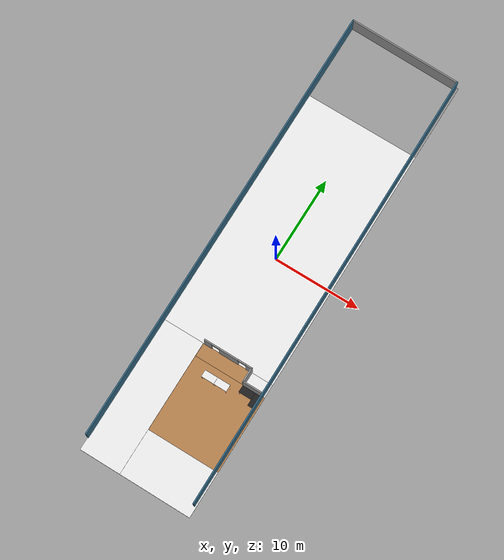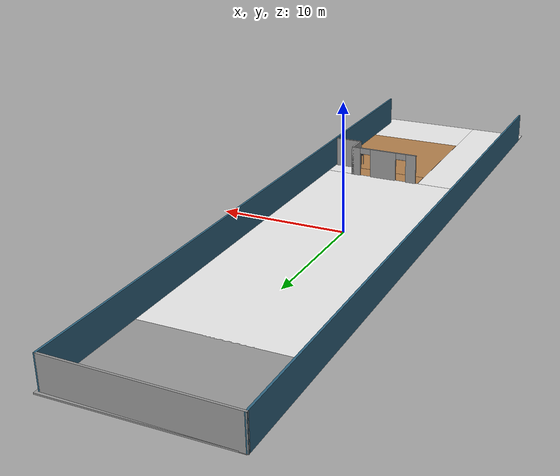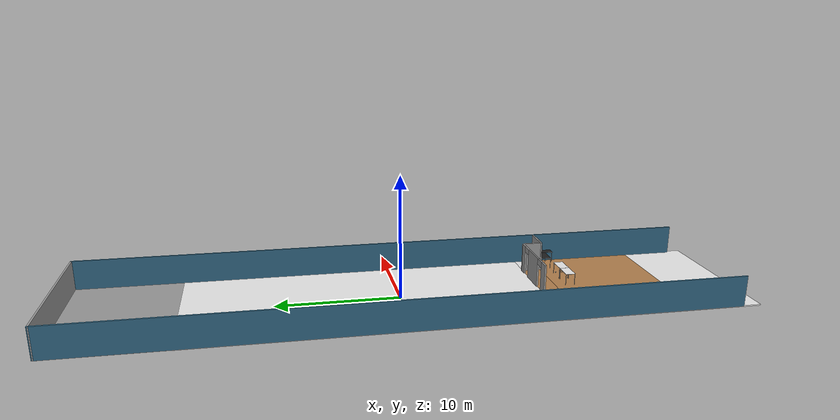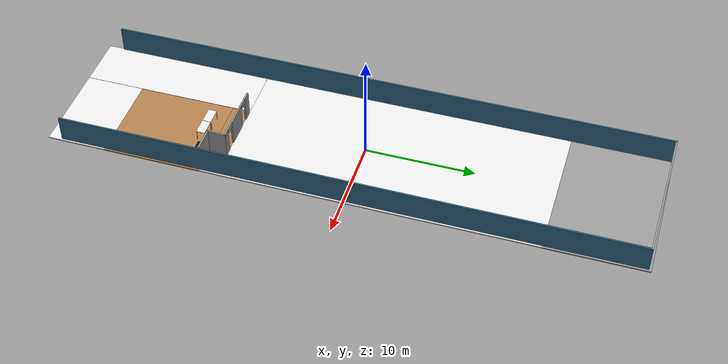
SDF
<sdf version="1.7">
 <model name="ageve">
  <link name="Wall_13">
   <pose>6.47851 -0.1058 0 0 -0 1.5708</pose>
   <visual name="Wall_13_Visual">
    <pose>0 0 1.25 0 -0 0</pose>
    <geometry><box><size>52.25 0.15 2.5</size></box></geometry>
    <material>
     <ambient>0.19 0.4 0.51 1</ambient>
     <diffuse>0.19 0.4 0.51 1</diffuse>
     <specular>0.19 0.4 0.51 1</specular>
     <emissive>0.19 0.4 0.51 1</emissive>
     <shader type="pixel"/>
     <script><name>ModelPreview_1::Wall_9::Wall_9_Visual_MATERIAL_</name><uri>__default__</uri></script>
    </material>
    <meta><layer>0</layer></meta>
   </visual>
   <collision name="Wall_13_Collision">
    <pose>0 0 1.25 0 -0 0</pose>
    <geometry><box><size>52.25 0.15 2.5</size></box></geometry>
    <surface>
     <friction>
      <ode><mu>1</mu><mu2>1</mu2><fdir1>0 0 0</fdir1><slip1>0</slip1><slip2>0</slip2></ode>
      <torsional>
       <coefficient>1</coefficient>
       <patch_radius>0</patch_radius>
       <surface_radius>0</surface_radius>
       <use_patch_radius>1</use_patch_radius>
       <ode><slip>0</slip></ode>
      </torsional>
     </friction>
     <bounce><restitution_coefficient>0</restitution_coefficient><threshold>1e+06</threshold></bounce>
     <contact>
      <collide_without_contact>0</collide_without_contact>
      <collide_without_contact_bitmask>1</collide_without_contact_bitmask>
      <collide_bitmask>1</collide_bitmask>
      <ode>
       <soft_cfm>0</soft_cfm>
       <soft_erp>0.2</soft_erp>
       <kp>1e+13</kp>
       <kd>1</kd>
       <max_vel>0.01</max_vel>
       <min_depth>0</min_depth>
      </ode>
      <bullet>
       <split_impulse>1</split_impulse>
       <split_impulse_penetration_threshold>-0.01</split_impulse_penetration_threshold>
       <soft_cfm>0</soft_cfm>
       <soft_erp>0.2</soft_erp>
       <kp>1e+13</kp>
       <kd>1</kd>
      </bullet>
     </contact>
    </surface>
   </collision>
  </link>
  <link name="Wall_14">
   <pose>-0.012617 26.05 0 0 -0 3.12523</pose>
   <visual name="Wall_14_Visual">
    <pose>0 0 1.25 0 -0 0</pose>
    <geometry><box><size>13.0811 0.15 2.5</size></box></geometry>
    <material>
     <script><uri>file://media/materials/scripts/gazebo.material</uri><name>Gazebo/Grey</name></script>
     <ambient>1 1 1 1</ambient>
     <shader type="pixel"/>
    </material>
    <meta><layer>0</layer></meta>
   </visual>
   <collision name="Wall_14_Collision">
    <pose>0 0 1.25 0 -0 0</pose>
    <geometry><box><size>13.0811 0.15 2.5</size></box></geometry>
    <surface>
     <friction>
      <ode><mu>1</mu><mu2>1</mu2><fdir1>0 0 0</fdir1><slip1>0</slip1><slip2>0</slip2></ode>
      <torsional>
       <coefficient>1</coefficient>
       <patch_radius>0</patch_radius>
       <surface_radius>0</surface_radius>
       <use_patch_radius>1</use_patch_radius>
       <ode><slip>0</slip></ode>
      </torsional>
     </friction>
     <bounce><restitution_coefficient>0</restitution_coefficient><threshold>1e+06</threshold></bounce>
     <contact>
      <collide_without_contact>0</collide_without_contact>
      <collide_without_contact_bitmask>1</collide_without_contact_bitmask>
      <collide_bitmask>1</collide_bitmask>
      <ode>
       <soft_cfm>0</soft_cfm>
       <soft_erp>0.2</soft_erp>
       <kp>1e+13</kp>
       <kd>1</kd>
       <max_vel>0.01</max_vel>
       <min_depth>0</min_depth>
      </ode>
      <bullet>
       <split_impulse>1</split_impulse>
       <split_impulse_penetration_threshold>-0.01</split_impulse_penetration_threshold>
       <soft_cfm>0</soft_cfm>
       <soft_erp>0.2</soft_erp>
       <kp>1e+13</kp>
       <kd>1</kd>
      </bullet>
     </contact>
    </surface>
   </collision>
  </link>
  <link name="Wall_15">
   <pose>-6.47729 0.1058 0 0 0 -1.5708</pose>
   <visual name="Wall_15_Visual">
    <pose>0 0 1.25 0 -0 0</pose>
    <geometry><box><size>52.25 0.15 2.5</size></box></geometry>
    <material>
     <ambient>0.19 0.4 0.51 1</ambient>
     <diffuse>0.19 0.4 0.51 1</diffuse>
     <specular>0.19 0.4 0.51 1</specular>
     <emissive>0.19 0.4 0.51 1</emissive>
     <shader type="pixel"/>
     <script><name>ModelPreview_1::Wall_9::Wall_9_Visual_MATERIAL_</name><uri>__default__</uri></script>
    </material>
    <meta><layer>0</layer></meta>
   </visual>
   <collision name="Wall_15_Collision">
    <pose>0 0 1.25 0 -0 0</pose>
    <geometry><box><size>52.25 0.15 2.5</size></box></geometry>
    <surface>
     <friction>
      <ode><mu>1</mu><mu2>1</mu2><fdir1>0 0 0</fdir1><slip1>0</slip1><slip2>0</slip2></ode>
      <torsional>
       <coefficient>1</coefficient>
       <patch_radius>0</patch_radius>
       <surface_radius>0</surface_radius>
       <use_patch_radius>1</use_patch_radius>
       <ode><slip>0</slip></ode>
      </torsional>
     </friction>
     <bounce><restitution_coefficient>0</restitution_coefficient><threshold>1e+06</threshold></bounce>
     <contact>
      <collide_without_contact>0</collide_without_contact>
      <collide_without_contact_bitmask>1</collide_without_contact_bitmask>
      <collide_bitmask>1</collide_bitmask>
      <ode>
       <soft_cfm>0</soft_cfm>
       <soft_erp>0.2</soft_erp>
       <kp>1e+13</kp>
       <kd>1</kd>
       <max_vel>0.01</max_vel>
       <min_depth>0</min_depth>
      </ode>
      <bullet>
       <split_impulse>1</split_impulse>
       <split_impulse_penetration_threshold>-0.01</split_impulse_penetration_threshold>
       <soft_cfm>0</soft_cfm>
       <soft_erp>0.2</soft_erp>
       <kp>1e+13</kp>
       <kd>1</kd>
      </bullet>
     </contact>
    </surface>
   </collision>
  </link>
  <link name="Wall_4">
   <pose>1.37549 -11.4935 0 0 -0 0</pose>
   <visual name="Wall_4_Visual_0">
    <pose>-2.43007 0 1.25 0 -0 0</pose>
    <geometry><box><size>0.889859 0.15 2.5</size></box></geometry>
    <material>
     <script><uri>file://media/materials/scripts/gazebo.material</uri><name>Gazebo/Grey</name></script>
     <ambient>1 1 1 1</ambient>
     <shader type="pixel"/>
    </material>
    <meta><layer>0</layer></meta>
   </visual>
   <visual name="Wall_4_Visual_1">
    <pose>0.056164 0 1.25 0 -0 0</pose>
    <geometry><box><size>2.28261 0.15 2.5</size></box></geometry>
    <material>
     <script><uri>file://media/materials/scripts/gazebo.material</uri><name>Gazebo/Grey</name></script>
     <ambient>1 1 1 1</ambient>
     <shader type="pixel"/>
    </material>
    <meta><layer>0</layer></meta>
   </visual>
   <visual name="Wall_4_Visual_2">
    <pose>2.48623 0 1.25 0 -0 0</pose>
    <geometry><box><size>0.777532 0.15 2.5</size></box></geometry>
    <material>
     <script><uri>file://media/materials/scripts/gazebo.material</uri><name>Gazebo/Grey</name></script>
     <ambient>1 1 1 1</ambient>
     <shader type="pixel"/>
    </material>
    <meta><layer>0</layer></meta>
   </visual>
   <visual name="Wall_4_Visual_3">
    <pose>-1.53514 0 2.25 0 -0 0</pose>
    <geometry><box><size>0.9 0.15 0.5</size></box></geometry>
    <material>
     <script><uri>file://media/materials/scripts/gazebo.material</uri><name>Gazebo/Grey</name></script>
     <ambient>1 1 1 1</ambient>
     <shader type="pixel"/>
    </material>
    <meta><layer>0</layer></meta>
   </visual>
   <visual name="Wall_4_Visual_4">
    <pose>1.64747 0 2.25 0 -0 0</pose>
    <geometry><box><size>0.9 0.15 0.5</size></box></geometry>
    <material>
     <script><uri>file://media/materials/scripts/gazebo.material</uri><name>Gazebo/Grey</name></script>
     <ambient>1 1 1 1</ambient>
     <shader type="pixel"/>
    </material>
    <meta><layer>0</layer></meta>
   </visual>
   <collision name="Wall_4_Collision_0">
    <pose>-2.43007 0 1.25 0 -0 0</pose>
    <geometry><box><size>0.889859 0.15 2.5</size></box></geometry>
    <surface>
     <friction>
      <ode><mu>1</mu><mu2>1</mu2><fdir1>0 0 0</fdir1><slip1>0</slip1><slip2>0</slip2></ode>
      <torsional>
       <coefficient>1</coefficient>
       <patch_radius>0</patch_radius>
       <surface_radius>0</surface_radius>
       <use_patch_radius>1</use_patch_radius>
       <ode><slip>0</slip></ode>
      </torsional>
     </friction>
     <bounce><restitution_coefficient>0</restitution_coefficient><threshold>1e+06</threshold></bounce>
     <contact>
      <collide_without_contact>0</collide_without_contact>
      <collide_without_contact_bitmask>1</collide_without_contact_bitmask>
      <collide_bitmask>1</collide_bitmask>
      <ode>
       <soft_cfm>0</soft_cfm>
       <soft_erp>0.2</soft_erp>
       <kp>1e+13</kp>
       <kd>1</kd>
       <max_vel>0.01</max_vel>
       <min_depth>0</min_depth>
      </ode>
      <bullet>
       <split_impulse>1</split_impulse>
       <split_impulse_penetration_threshold>-0.01</split_impulse_penetration_threshold>
       <soft_cfm>0</soft_cfm>
       <soft_erp>0.2</soft_erp>
       <kp>1e+13</kp>
       <kd>1</kd>
      </bullet>
     </contact>
    </surface>
   </collision>
   <collision name="Wall_4_Collision_1">
    <pose>0.056164 0 1.25 0 -0 0</pose>
    <geometry><box><size>2.28261 0.15 2.5</size></box></geometry>
    <surface>
     <friction>
      <ode><mu>1</mu><mu2>1</mu2><fdir1>0 0 0</fdir1><slip1>0</slip1><slip2>0</slip2></ode>
      <torsional>
       <coefficient>1</coefficient>
       <patch_radius>0</patch_radius>
       <surface_radius>0</surface_radius>
       <use_patch_radius>1</use_patch_radius>
       <ode><slip>0</slip></ode>
      </torsional>
     </friction>
     <bounce><restitution_coefficient>0</restitution_coefficient><threshold>1e+06</threshold></bounce>
     <contact>
      <collide_without_contact>0</collide_without_contact>
      <collide_without_contact_bitmask>1</collide_without_contact_bitmask>
      <collide_bitmask>1</collide_bitmask>
      <ode>
       <soft_cfm>0</soft_cfm>
       <soft_erp>0.2</soft_erp>
       <kp>1e+13</kp>
       <kd>1</kd>
       <max_vel>0.01</max_vel>
       <min_depth>0</min_depth>
      </ode>
      <bullet>
       <split_impulse>1</split_impulse>
       <split_impulse_penetration_threshold>-0.01</split_impulse_penetration_threshold>
       <soft_cfm>0</soft_cfm>
       <soft_erp>0.2</soft_erp>
       <kp>1e+13</kp>
       <kd>1</kd>
      </bullet>
     </contact>
    </surface>
   </collision>
   <collision name="Wall_4_Collision_4">
    <pose>1.64747 0 2.25 0 -0 0</pose>
    <geometry><box><size>0.9 0.15 0.5</size></box></geometry>
    <surface>
     <friction>
      <ode><mu>1</mu><mu2>1</mu2><fdir1>0 0 0</fdir1><slip1>0</slip1><slip2>0</slip2></ode>
      <torsional>
       <coefficient>1</coefficient>
       <patch_radius>0</patch_radius>
       <surface_radius>0</surface_radius>
       <use_patch_radius>1</use_patch_radius>
       <ode><slip>0</slip></ode>
      </torsional>
     </friction>
     <bounce><restitution_coefficient>0</restitution_coefficient><threshold>1e+06</threshold></bounce>
     <contact>
      <collide_without_contact>0</collide_without_contact>
      <collide_without_contact_bitmask>1</collide_without_contact_bitmask>
      <collide_bitmask>1</collide_bitmask>
      <ode>
       <soft_cfm>0</soft_cfm>
       <soft_erp>0.2</soft_erp>
       <kp>1e+13</kp>
       <kd>1</kd>
       <max_vel>0.01</max_vel>
       <min_depth>0</min_depth>
      </ode>
      <bullet>
       <split_impulse>1</split_impulse>
       <split_impulse_penetration_threshold>-0.01</split_impulse_penetration_threshold>
       <soft_cfm>0</soft_cfm>
       <soft_erp>0.2</soft_erp>
       <kp>1e+13</kp>
       <kd>1</kd>
      </bullet>
     </contact>
    </surface>
   </collision>
   <collision name="Wall_4_Collision_2">
    <pose>2.48623 0 1.25 0 -0 0</pose>
    <geometry><box><size>0.777532 0.15 2.5</size></box></geometry>
    <surface>
     <friction>
      <ode><mu>1</mu><mu2>1</mu2><fdir1>0 0 0</fdir1><slip1>0</slip1><slip2>0</slip2></ode>
      <torsional>
       <coefficient>1</coefficient>
       <patch_radius>0</patch_radius>
       <surface_radius>0</surface_radius>
       <use_patch_radius>1</use_patch_radius>
       <ode><slip>0</slip></ode>
      </torsional>
     </friction>
     <bounce><restitution_coefficient>0</restitution_coefficient><threshold>1e+06</threshold></bounce>
     <contact>
      <collide_without_contact>0</collide_without_contact>
      <collide_without_contact_bitmask>1</collide_without_contact_bitmask>
      <collide_bitmask>1</collide_bitmask>
      <ode>
       <soft_cfm>0</soft_cfm>
       <soft_erp>0.2</soft_erp>
       <kp>1e+13</kp>
       <kd>1</kd>
       <max_vel>0.01</max_vel>
       <min_depth>0</min_depth>
      </ode>
      <bullet>
       <split_impulse>1</split_impulse>
       <split_impulse_penetration_threshold>-0.01</split_impulse_penetration_threshold>
       <soft_cfm>0</soft_cfm>
       <soft_erp>0.2</soft_erp>
       <kp>1e+13</kp>
       <kd>1</kd>
      </bullet>
     </contact>
    </surface>
   </collision>
   <collision name="Wall_4_Collision_3">
    <pose>-1.53514 0 2.25 0 -0 0</pose>
    <geometry><box><size>0.9 0.15 0.5</size></box></geometry>
    <surface>
     <friction>
      <ode><mu>1</mu><mu2>1</mu2><fdir1>0 0 0</fdir1><slip1>0</slip1><slip2>0</slip2></ode>
      <torsional>
       <coefficient>1</coefficient>
       <patch_radius>0</patch_radius>
       <surface_radius>0</surface_radius>
       <use_patch_radius>1</use_patch_radius>
       <ode><slip>0</slip></ode>
      </torsional>
     </friction>
     <bounce><restitution_coefficient>0</restitution_coefficient><threshold>1e+06</threshold></bounce>
     <contact>
      <collide_without_contact>0</collide_without_contact>
      <collide_without_contact_bitmask>1</collide_without_contact_bitmask>
      <collide_bitmask>1</collide_bitmask>
      <ode>
       <soft_cfm>0</soft_cfm>
       <soft_erp>0.2</soft_erp>
       <kp>1e+13</kp>
       <kd>1</kd>
       <max_vel>0.01</max_vel>
       <min_depth>0</min_depth>
      </ode>
      <bullet>
       <split_impulse>1</split_impulse>
       <split_impulse_penetration_threshold>-0.01</split_impulse_penetration_threshold>
       <soft_cfm>0</soft_cfm>
       <soft_erp>0.2</soft_erp>
       <kp>1e+13</kp>
       <kd>1</kd>
      </bullet>
     </contact>
    </surface>
   </collision>
  </link>
  <link name="Wall_5">
   <pose>4.17549 -12.2935 0 0 0 -1.5708</pose>
   <visual name="Wall_5_Visual">
    <pose>0 0 1.25 0 -0 0</pose>
    <geometry><box><size>1.75 0.15 2.5</size></box></geometry>
    <material>
     <script><uri>file://media/materials/scripts/gazebo.material</uri><name>Gazebo/Grey</name></script>
     <ambient>1 1 1 1</ambient>
     <shader type="pixel"/>
    </material>
    <meta><layer>0</layer></meta>
   </visual>
   <collision name="Wall_5_Collision">
    <pose>0 0 1.25 0 -0 0</pose>
    <geometry><box><size>1.75 0.15 2.5</size></box></geometry>
    <surface>
     <friction>
      <ode><mu>1</mu><mu2>1</mu2><fdir1>0 0 0</fdir1><slip1>0</slip1><slip2>0</slip2></ode>
      <torsional>
       <coefficient>1</coefficient>
       <patch_radius>0</patch_radius>
       <surface_radius>0</surface_radius>
       <use_patch_radius>1</use_patch_radius>
       <ode><slip>0</slip></ode>
      </torsional>
     </friction>
     <bounce><restitution_coefficient>0</restitution_coefficient><threshold>1e+06</threshold></bounce>
     <contact>
      <collide_without_contact>0</collide_without_contact>
      <collide_without_contact_bitmask>1</collide_without_contact_bitmask>
      <collide_bitmask>1</collide_bitmask>
      <ode>
       <soft_cfm>0</soft_cfm>
       <soft_erp>0.2</soft_erp>
       <kp>1e+13</kp>
       <kd>1</kd>
       <max_vel>0.01</max_vel>
       <min_depth>0</min_depth>
      </ode>
      <bullet>
       <split_impulse>1</split_impulse>
       <split_impulse_penetration_threshold>-0.01</split_impulse_penetration_threshold>
       <soft_cfm>0</soft_cfm>
       <soft_erp>0.2</soft_erp>
       <kp>1e+13</kp>
       <kd>1</kd>
      </bullet>
     </contact>
    </surface>
   </collision>
  </link>
  <link name="Wall_6">
   <pose>5.22549 -13.0935 0 0 -0 0</pose>
   <visual name="Wall_6_Visual">
    <pose>0 0 1.25 0 -0 0</pose>
    <geometry><box><size>2.25 0.15 2.5</size></box></geometry>
    <material>
     <script><uri>file://media/materials/scripts/gazebo.material</uri><name>Gazebo/Grey</name></script>
     <ambient>1 1 1 1</ambient>
     <shader type="pixel"/>
    </material>
    <meta><layer>0</layer></meta>
   </visual>
   <collision name="Wall_6_Collision">
    <pose>0 0 1.25 0 -0 0</pose>
    <geometry><box><size>2.25 0.15 2.5</size></box></geometry>
    <surface>
     <friction>
      <ode><mu>1</mu><mu2>1</mu2><fdir1>0 0 0</fdir1><slip1>0</slip1><slip2>0</slip2></ode>
      <torsional>
       <coefficient>1</coefficient>
       <patch_radius>0</patch_radius>
       <surface_radius>0</surface_radius>
       <use_patch_radius>1</use_patch_radius>
       <ode><slip>0</slip></ode>
      </torsional>
     </friction>
     <bounce><restitution_coefficient>0</restitution_coefficient><threshold>1e+06</threshold></bounce>
     <contact>
      <collide_without_contact>0</collide_without_contact>
      <collide_without_contact_bitmask>1</collide_without_contact_bitmask>
      <collide_bitmask>1</collide_bitmask>
      <ode>
       <soft_cfm>0</soft_cfm>
       <soft_erp>0.2</soft_erp>
       <kp>1e+13</kp>
       <kd>1</kd>
       <max_vel>0.01</max_vel>
       <min_depth>0</min_depth>
      </ode>
      <bullet>
       <split_impulse>1</split_impulse>
       <split_impulse_penetration_threshold>-0.01</split_impulse_penetration_threshold>
       <soft_cfm>0</soft_cfm>
       <soft_erp>0.2</soft_erp>
       <kp>1e+13</kp>
       <kd>1</kd>
      </bullet>
     </contact>
    </surface>
   </collision>
  </link>
  <model name="ageve_floor">
   <link name="link">
    <pose>-2.67 23 0 0 -0 0</pose>
    <inertial>
     <mass>1</mass>
     <inertia><ixx>1</ixx><ixy>0</ixy><ixz>0</ixz><iyy>1</iyy><iyz>0</iyz><izz>1</izz></inertia>
    </inertial>
    <visual name="visual">
     <cast_shadows>0</cast_shadows>
     <geometry><box><size>13.2 9 0.1</size></box></geometry>
     <material>
      <shader type="pixel"><normal_map>__default__</normal_map></shader>
      <script><name>Gazebo/Grey</name><uri>__default__</uri></script>
     </material>
     <pose>-0.08 0 0 0 -0 0</pose>
    </visual>
    <collision name="collision">
     <pose>-0.06 0 0 0 -0 0</pose>
     <geometry><box><size>13.2 9 0.1</size></box></geometry>
     <surface>
      <friction>
       <ode><mu>1</mu><mu2>1</mu2><fdir1>0 0 0</fdir1><slip1>0</slip1><slip2>0</slip2></ode>
       <torsional>
        <coefficient>1</coefficient>
        <patch_radius>0</patch_radius>
        <surface_radius>0</surface_radius>
        <use_patch_radius>1</use_patch_radius>
        <ode><slip>0</slip></ode>
       </torsional>
      </friction>
      <bounce><restitution_coefficient>0</restitution_coefficient><threshold>1e+06</threshold></bounce>
      <contact>
       <collide_without_contact>0</collide_without_contact>
       <collide_without_contact_bitmask>1</collide_without_contact_bitmask>
       <collide_bitmask>1</collide_bitmask>
       <ode>
        <soft_cfm>0</soft_cfm>
        <soft_erp>0.2</soft_erp>
        <kp>1e+13</kp>
        <kd>1</kd>
        <max_vel>0.01</max_vel>
        <min_depth>0</min_depth>
       </ode>
       <bullet>
        <split_impulse>1</split_impulse>
        <split_impulse_penetration_threshold>-0.01</split_impulse_penetration_threshold>
        <soft_cfm>0</soft_cfm>
        <soft_erp>0.2</soft_erp>
        <kp>1e+13</kp>
        <kd>1</kd>
       </bullet>
      </contact>
     </surface>
    </collision>
   </link>
   <link name="link_clone">
    <pose>-2.69731 4.16 0 0 -0 0</pose>
    <inertial>
     <mass>1</mass>
     <inertia><ixx>1</ixx><ixy>0</ixy><ixz>0</ixz><iyy>1</iyy><iyz>0</iyz><izz>1</izz></inertia>
    </inertial>
    <visual name="visual">
     <cast_shadows>0</cast_shadows>
     <geometry><box><size>13.2 28.8 0.1</size></box></geometry>
     <material>
      <shader type="pixel"><normal_map>__default__</normal_map></shader>
      <script><name>Gazebo/White</name><uri>__default__</uri></script>
     </material>
     <pose>-0.08 0 0 0 -0 0</pose>
    </visual>
    <collision name="collision">
     <pose>-0.06 0 0 0 -0 0</pose>
     <geometry><box><size>13.2 28.8 0.1</size></box></geometry>
     <surface>
      <friction>
       <ode><mu>1</mu><mu2>1</mu2><fdir1>0 0 0</fdir1><slip1>0</slip1><slip2>0</slip2></ode>
       <torsional>
        <coefficient>1</coefficient>
        <patch_radius>0</patch_radius>
        <surface_radius>0</surface_radius>
        <use_patch_radius>1</use_patch_radius>
        <ode><slip>0</slip></ode>
       </torsional>
      </friction>
      <bounce><restitution_coefficient>0</restitution_coefficient><threshold>1e+06</threshold></bounce>
      <contact>
       <collide_without_contact>0</collide_without_contact>
       <collide_without_contact_bitmask>1</collide_without_contact_bitmask>
       <collide_bitmask>1</collide_bitmask>
       <ode>
        <soft_cfm>0</soft_cfm>
        <soft_erp>0.2</soft_erp>
        <kp>1e+13</kp>
        <kd>1</kd>
        <max_vel>0.01</max_vel>
        <min_depth>0</min_depth>
       </ode>
       <bullet>
        <split_impulse>1</split_impulse>
        <split_impulse_penetration_threshold>-0.01</split_impulse_penetration_threshold>
        <soft_cfm>0</soft_cfm>
        <soft_erp>0.2</soft_erp>
        <kp>1e+13</kp>
        <kd>1</kd>
       </bullet>
      </contact>
     </surface>
    </collision>
   </link>
   <link name="link_clone_0">
    <pose>-0.3 -16.2948 0 0 -0 0</pose>
    <inertial>
     <mass>1</mass>
     <inertia><ixx>1</ixx><ixy>0</ixy><ixz>0</ixz><iyy>1</iyy><iyz>0</iyz><izz>1</izz></inertia>
    </inertial>
    <visual name="visual">
     <cast_shadows>0</cast_shadows>
     <geometry><box><size>8.4 9 0.1</size></box></geometry>
     <material>
      <shader type="pixel"><normal_map>__default__</normal_map></shader>
      <script><name>Gazebo/Wood</name><uri>__default__</uri></script>
     </material>
     <pose>-0.08 0 0 0 -0 0</pose>
    </visual>
    <collision name="collision">
     <pose>-0.06 0 0 0 -0 0</pose>
     <geometry><box><size>8.4 9 0.1</size></box></geometry>
     <surface>
      <friction>
       <ode><mu>1</mu><mu2>1</mu2><fdir1>0 0 0</fdir1><slip1>0</slip1><slip2>0</slip2></ode>
       <torsional>
        <coefficient>1</coefficient>
        <patch_radius>0</patch_radius>
        <surface_radius>0</surface_radius>
        <use_patch_radius>1</use_patch_radius>
        <ode><slip>0</slip></ode>
       </torsional>
      </friction>
      <bounce><restitution_coefficient>0</restitution_coefficient><threshold>1e+06</threshold></bounce>
      <contact>
       <collide_without_contact>0</collide_without_contact>
       <collide_without_contact_bitmask>1</collide_without_contact_bitmask>
       <collide_bitmask>1</collide_bitmask>
       <ode>
        <soft_cfm>0</soft_cfm>
        <soft_erp>0.2</soft_erp>
        <kp>1e+13</kp>
        <kd>1</kd>
        <max_vel>0.01</max_vel>
        <min_depth>0</min_depth>
       </ode>
       <bullet>
        <split_impulse>1</split_impulse>
        <split_impulse_penetration_threshold>-0.01</split_impulse_penetration_threshold>
        <soft_cfm>0</soft_cfm>
        <soft_erp>0.2</soft_erp>
        <kp>1e+13</kp>
        <kd>1</kd>
       </bullet>
      </contact>
     </surface>
    </collision>
   </link>
   <link name="link_clone_0_clone">
    <pose>-1.58 -11 0 0 -0 0</pose>
    <inertial>
     <mass>1</mass>
     <inertia><ixx>1</ixx><ixy>0</ixy><ixz>0</ixz><iyy>1</iyy><iyz>0</iyz><izz>1</izz></inertia>
    </inertial>
    <visual name="visual">
     <cast_shadows>0</cast_shadows>
     <geometry><box><size>5.8 1.6 0.1</size></box></geometry>
     <material>
      <shader type="pixel"><normal_map>__default__</normal_map></shader>
      <script><name>Gazebo/Wood</name><uri>__default__</uri></script>
     </material>
     <pose>-0.08 0 0 0 -0 0</pose>
    </visual>
    <collision name="collision">
     <pose>-0.06 0 0 0 -0 0</pose>
     <geometry><box><size>5.8 1.6 0.1</size></box></geometry>
     <surface>
      <friction>
       <ode><mu>1</mu><mu2>1</mu2><fdir1>0 0 0</fdir1><slip1>0</slip1><slip2>0</slip2></ode>
       <torsional>
        <coefficient>1</coefficient>
        <patch_radius>0</patch_radius>
        <surface_radius>0</surface_radius>
        <use_patch_radius>1</use_patch_radius>
        <ode><slip>0</slip></ode>
       </torsional>
      </friction>
      <bounce><restitution_coefficient>0</restitution_coefficient><threshold>1e+06</threshold></bounce>
      <contact>
       <collide_without_contact>0</collide_without_contact>
       <collide_without_contact_bitmask>1</collide_without_contact_bitmask>
       <collide_bitmask>1</collide_bitmask>
       <ode>
        <soft_cfm>0</soft_cfm>
        <soft_erp>0.2</soft_erp>
        <kp>1e+13</kp>
        <kd>1</kd>
        <max_vel>0.01</max_vel>
        <min_depth>0</min_depth>
       </ode>
       <bullet>
        <split_impulse>1</split_impulse>
        <split_impulse_penetration_threshold>-0.01</split_impulse_penetration_threshold>
        <soft_cfm>0</soft_cfm>
        <soft_erp>0.2</soft_erp>
        <kp>1e+13</kp>
        <kd>1</kd>
       </bullet>
      </contact>
     </surface>
    </collision>
   </link>
   <link name="link_clone_clone">
    <pose>-6.92 -18.18 0 0 -0 0</pose>
    <inertial>
     <mass>1</mass>
     <inertia><ixx>1</ixx><ixy>0</ixy><ixz>0</ixz><iyy>1</iyy><iyz>0</iyz><izz>1</izz></inertia>
    </inertial>
    <visual name="visual">
     <cast_shadows>0</cast_shadows>
     <geometry><box><size>4.8 16 0.1</size></box></geometry>
     <material>
      <shader type="pixel"><normal_map>__default__</normal_map></shader>
      <script><name>Gazebo/White</name><uri>__default__</uri></script>
     </material>
     <pose>-0.08 0 0 0 -0 0</pose>
    </visual>
    <collision name="collision">
     <pose>-0.06 0 0 0 -0 0</pose>
     <geometry><box><size>4.8 16 0.1</size></box></geometry>
     <surface>
      <friction>
       <ode><mu>1</mu><mu2>1</mu2><fdir1>0 0 0</fdir1><slip1>0</slip1><slip2>0</slip2></ode>
       <torsional>
        <coefficient>1</coefficient>
        <patch_radius>0</patch_radius>
        <surface_radius>0</surface_radius>
        <use_patch_radius>1</use_patch_radius>
        <ode><slip>0</slip></ode>
       </torsional>
      </friction>
      <bounce><restitution_coefficient>0</restitution_coefficient><threshold>1e+06</threshold></bounce>
      <contact>
       <collide_without_contact>0</collide_without_contact>
       <collide_without_contact_bitmask>1</collide_without_contact_bitmask>
       <collide_bitmask>1</collide_bitmask>
       <ode>
        <soft_cfm>0</soft_cfm>
        <soft_erp>0.2</soft_erp>
        <kp>1e+13</kp>
        <kd>1</kd>
        <max_vel>0.01</max_vel>
        <min_depth>0</min_depth>
       </ode>
       <bullet>
        <split_impulse>1</split_impulse>
        <split_impulse_penetration_threshold>-0.01</split_impulse_penetration_threshold>
        <soft_cfm>0</soft_cfm>
        <soft_erp>0.2</soft_erp>
        <kp>1e+13</kp>
        <kd>1</kd>
       </bullet>
      </contact>
     </surface>
    </collision>
   </link>
   <link name="link_clone_clone_clone">
    <pose>2.57811 -11.04 0 0 -0 0</pose>
    <inertial>
     <mass>1</mass>
     <inertia><ixx>1</ixx><ixy>0</ixy><ixz>0</ixz><iyy>1</iyy><iyz>0</iyz><izz>1</izz></inertia>
    </inertial>
    <visual name="visual">
     <cast_shadows>0</cast_shadows>
     <geometry><box><size>2.6 1.6 0.1</size></box></geometry>
     <material>
      <shader type="pixel"><normal_map>__default__</normal_map></shader>
      <script><name>Gazebo/White</name><uri>__default__</uri></script>
     </material>
     <pose>-0.08 0 0 0 -0 0</pose>
    </visual>
    <collision name="collision">
     <pose>-0.06 0 0 0 -0 0</pose>
     <geometry><box><size>2.6 1.6 0.1</size></box></geometry>
     <surface>
      <friction>
       <ode><mu>1</mu><mu2>1</mu2><fdir1>0 0 0</fdir1><slip1>0</slip1><slip2>0</slip2></ode>
       <torsional>
        <coefficient>1</coefficient>
        <patch_radius>0</patch_radius>
        <surface_radius>0</surface_radius>
        <use_patch_radius>1</use_patch_radius>
        <ode><slip>0</slip></ode>
       </torsional>
      </friction>
      <bounce><restitution_coefficient>0</restitution_coefficient><threshold>1e+06</threshold></bounce>
      <contact>
       <collide_without_contact>0</collide_without_contact>
       <collide_without_contact_bitmask>1</collide_without_contact_bitmask>
       <collide_bitmask>1</collide_bitmask>
       <ode>
        <soft_cfm>0</soft_cfm>
        <soft_erp>0.2</soft_erp>
        <kp>1e+13</kp>
        <kd>1</kd>
        <max_vel>0.01</max_vel>
        <min_depth>0</min_depth>
       </ode>
       <bullet>
        <split_impulse>1</split_impulse>
        <split_impulse_penetration_threshold>-0.01</split_impulse_penetration_threshold>
        <soft_cfm>0</soft_cfm>
        <soft_erp>0.2</soft_erp>
        <kp>1e+13</kp>
        <kd>1</kd>
       </bullet>
      </contact>
     </surface>
    </collision>
   </link>
   <link name="link_clone_clone_clone_0">
    <pose>-0.313896 -23.48 0 0 -0 0</pose>
    <inertial>
     <mass>1</mass>
     <inertia><ixx>1</ixx><ixy>0</ixy><ixz>0</ixz><iyy>1</iyy><iyz>0</iyz><izz>1</izz></inertia>
    </inertial>
    <visual name="visual">
     <cast_shadows>0</cast_shadows>
     <geometry><box><size>8.4 5.4 0.1</size></box></geometry>
     <material>
      <shader type="pixel"><normal_map>__default__</normal_map></shader>
      <script><name>Gazebo/White</name><uri>__default__</uri></script>
     </material>
     <pose>-0.08 0 0 0 -0 0</pose>
    </visual>
    <collision name="collision">
     <pose>-0.06 0 0 0 -0 0</pose>
     <geometry><box><size>8.4 5.4 0.1</size></box></geometry>
     <surface>
      <friction>
       <ode><mu>1</mu><mu2>1</mu2><fdir1>0 0 0</fdir1><slip1>0</slip1><slip2>0</slip2></ode>
       <torsional>
        <coefficient>1</coefficient>
        <patch_radius>0</patch_radius>
        <surface_radius>0</surface_radius>
        <use_patch_radius>1</use_patch_radius>
        <ode><slip>0</slip></ode>
       </torsional>
      </friction>
      <bounce><restitution_coefficient>0</restitution_coefficient><threshold>1e+06</threshold></bounce>
      <contact>
       <collide_without_contact>0</collide_without_contact>
       <collide_without_contact_bitmask>1</collide_without_contact_bitmask>
       <collide_bitmask>1</collide_bitmask>
       <ode>
        <soft_cfm>0</soft_cfm>
        <soft_erp>0.2</soft_erp>
        <kp>1e+13</kp>
        <kd>1</kd>
        <max_vel>0.01</max_vel>
        <min_depth>0</min_depth>
       </ode>
       <bullet>
        <split_impulse>1</split_impulse>
        <split_impulse_penetration_threshold>-0.01</split_impulse_penetration_threshold>
        <soft_cfm>0</soft_cfm>
        <soft_erp>0.2</soft_erp>
        <kp>1e+13</kp>
        <kd>1</kd>
       </bullet>
      </contact>
     </surface>
    </collision>
   </link>
   <static>1</static>
   <pose>2.895 -1.27755 0 0 -0 0</pose>
  </model>
  <model name="coke_can">
   <link name="link">
    <inertial>
     <pose>0 0 0.06 0 -0 0</pose>
     <mass>0.39</mass>
     <inertia>
      <ixx>0.00055575</ixx>
      <ixy>0</ixy>
      <ixz>0</ixz>
      <iyy>0.00055575</iyy>
      <iyz>0</iyz>
      <izz>0.0001755</izz>
     </inertia>
    </inertial>
    <collision name="collision">
     <pose>0.003937 0.004724 -0.18 0 -0 0</pose>
     <geometry><mesh><uri>model://coke_can/meshes/coke_can.dae</uri></mesh></geometry>
     <surface>
      <friction><ode><mu>1</mu><mu2>1</mu2></ode></friction>
      <contact><ode><kp>1e+07</kp><kd>1</kd><min_depth>0.001</min_depth><max_vel>0.1</max_vel></ode></contact>
     </surface>
    </collision>
    <visual name="visual">
     <pose>0.003937 0.004724 -0.18 0 -0 0</pose>
     <geometry><mesh><uri>model://coke_can/meshes/coke_can.dae</uri></mesh></geometry>
    </visual>
   </link>
   <pose>3.18141 -14.1839 0 0 -0 0</pose>
  </model>
  <model name="table">
   <static>1</static>
   <link name="link">
    <collision name="surface">
     <pose>0 0 1 0 -0 0</pose>
     <geometry><box><size>1.5 0.8 0.03</size></box></geometry>
     <surface><friction><ode><mu>0.6</mu><mu2>0.6</mu2></ode></friction></surface>
    </collision>
    <visual name="visual1">
     <pose>0 0 1 0 -0 0</pose>
     <geometry><box><size>1.5 0.8 0.03</size></box></geometry>
     <material>
      <script><uri>file://media/materials/scripts/gazebo.material</uri><name>Gazebo/FlatBlack</name></script>
     </material>
    </visual>
    <collision name="front_left_leg">
     <pose>0.68 0.38 0.5 0 -0 0</pose>
     <geometry><cylinder><radius>0.02</radius><length>1</length></cylinder></geometry>
    </collision>
    <visual name="front_left_leg">
     <pose>0.68 0.38 0.5 0 -0 0</pose>
     <geometry><cylinder><radius>0.02</radius><length>1</length></cylinder></geometry>
     <material>
      <script><uri>file://media/materials/scripts/gazebo.material</uri><name>Gazebo/FlatBlack</name></script>
     </material>
    </visual>
    <collision name="front_right_leg">
     <pose>0.68 -0.38 0.5 0 -0 0</pose>
     <geometry><cylinder><radius>0.02</radius><length>1</length></cylinder></geometry>
    </collision>
    <visual name="front_right_leg">
     <pose>0.68 -0.38 0.5 0 -0 0</pose>
     <geometry><cylinder><radius>0.02</radius><length>1</length></cylinder></geometry>
     <material>
      <script><uri>file://media/materials/scripts/gazebo.material</uri><name>Gazebo/Grey</name></script>
     </material>
    </visual>
    <collision name="back_right_leg">
     <pose>-0.68 -0.38 0.5 0 -0 0</pose>
     <geometry><cylinder><radius>0.02</radius><length>1</length></cylinder></geometry>
    </collision>
    <visual name="back_right_leg">
     <pose>-0.68 -0.38 0.5 0 -0 0</pose>
     <geometry><cylinder><radius>0.02</radius><length>1</length></cylinder></geometry>
     <material>
      <script><uri>file://media/materials/scripts/gazebo.material</uri><name>Gazebo/Grey</name></script>
     </material>
    </visual>
    <collision name="back_left_leg">
     <pose>-0.68 0.38 0.5 0 -0 0</pose>
     <geometry><cylinder><radius>0.02</radius><length>1</length></cylinder></geometry>
    </collision>
    <visual name="back_left_leg">
     <pose>-0.68 0.38 0.5 0 -0 0</pose>
     <geometry><cylinder><radius>0.02</radius><length>1</length></cylinder></geometry>
     <material>
      <script><uri>file://media/materials/scripts/gazebo.material</uri><name>Gazebo/Grey</name></script>
     </material>
    </visual>
   </link>
   <pose>4.95824 -13.673 0 0 -0 0</pose>
  </model>
  <model name="table_0">
   <static>1</static>
   <link name="link">
    <collision name="surface">
     <pose>0 0 1 0 -0 0</pose>
     <geometry><box><size>1.5 0.8 0.03</size></box></geometry>
     <surface><friction><ode><mu>0.6</mu><mu2>0.6</mu2></ode></friction></surface>
    </collision>
    <visual name="visual1">
     <pose>0 0 1 0 -0 0</pose>
     <geometry><box><size>1.5 0.8 0.03</size></box></geometry>
     <material>
      <script><uri>file://media/materials/scripts/gazebo.material</uri><name>Gazebo/White</name></script>
     </material>
    </visual>
    <collision name="front_left_leg">
     <pose>0.68 0.38 0.5 0 -0 0</pose>
     <geometry><cylinder><radius>0.02</radius><length>1</length></cylinder></geometry>
    </collision>
    <visual name="front_left_leg">
     <pose>0.68 0.38 0.5 0 -0 0</pose>
     <geometry><cylinder><radius>0.02</radius><length>1</length></cylinder></geometry>
     <material>
      <script><uri>file://media/materials/scripts/gazebo.material</uri><name>Gazebo/Grey</name></script>
     </material>
    </visual>
    <collision name="front_right_leg">
     <pose>0.68 -0.38 0.5 0 -0 0</pose>
     <geometry><cylinder><radius>0.02</radius><length>1</length></cylinder></geometry>
    </collision>
    <visual name="front_right_leg">
     <pose>0.68 -0.38 0.5 0 -0 0</pose>
     <geometry><cylinder><radius>0.02</radius><length>1</length></cylinder></geometry>
     <material>
      <script><uri>file://media/materials/scripts/gazebo.material</uri><name>Gazebo/Grey</name></script>
     </material>
    </visual>
    <collision name="back_right_leg">
     <pose>-0.68 -0.38 0.5 0 -0 0</pose>
     <geometry><cylinder><radius>0.02</radius><length>1</length></cylinder></geometry>
    </collision>
    <visual name="back_right_leg">
     <pose>-0.68 -0.38 0.5 0 -0 0</pose>
     <geometry><cylinder><radius>0.02</radius><length>1</length></cylinder></geometry>
     <material>
      <script><uri>file://media/materials/scripts/gazebo.material</uri><name>Gazebo/Grey</name></script>
     </material>
    </visual>
    <collision name="back_left_leg">
     <pose>-0.68 0.38 0.5 0 -0 0</pose>
     <geometry><cylinder><radius>0.02</radius><length>1</length></cylinder></geometry>
    </collision>
    <visual name="back_left_leg">
     <pose>-0.68 0.38 0.5 0 -0 0</pose>
     <geometry><cylinder><radius>0.02</radius><length>1</length></cylinder></geometry>
     <material>
      <script><uri>file://media/materials/scripts/gazebo.material</uri><name>Gazebo/Grey</name></script>
     </material>
    </visual>
   </link>
   <pose>2.35731 -14.3119 0 0 -0 0</pose>
  </model>
  <model name="table_1">
   <static>1</static>
   <link name="link">
    <collision name="surface">
     <pose>0 0 1 0 -0 0</pose>
     <geometry><box><size>1.5 0.8 0.03</size></box></geometry>
     <surface><friction><ode><mu>0.6</mu><mu2>0.6</mu2></ode></friction></surface>
    </collision>
    <visual name="visual1">
     <pose>0 0 1 0 -0 0</pose>
     <geometry><box><size>1.5 0.8 0.03</size></box></geometry>
     <material>
      <script><uri>file://media/materials/scripts/gazebo.material</uri><name>Gazebo/White</name></script>
     </material>
    </visual>
    <collision name="front_left_leg">
     <pose>0.68 0.38 0.5 0 -0 0</pose>
     <geometry><cylinder><radius>0.02</radius><length>1</length></cylinder></geometry>
    </collision>
    <visual name="front_left_leg">
     <pose>0.68 0.38 0.5 0 -0 0</pose>
     <geometry><cylinder><radius>0.02</radius><length>1</length></cylinder></geometry>
     <material>
      <script><uri>file://media/materials/scripts/gazebo.material</uri><name>Gazebo/Grey</name></script>
     </material>
    </visual>
    <collision name="front_right_leg">
     <pose>0.68 -0.38 0.5 0 -0 0</pose>
     <geometry><cylinder><radius>0.02</radius><length>1</length></cylinder></geometry>
    </collision>
    <visual name="front_right_leg">
     <pose>0.68 -0.38 0.5 0 -0 0</pose>
     <geometry><cylinder><radius>0.02</radius><length>1</length></cylinder></geometry>
     <material>
      <script><uri>file://media/materials/scripts/gazebo.material</uri><name>Gazebo/Grey</name></script>
     </material>
    </visual>
    <collision name="back_right_leg">
     <pose>-0.68 -0.38 0.5 0 -0 0</pose>
     <geometry><cylinder><radius>0.02</radius><length>1</length></cylinder></geometry>
    </collision>
    <visual name="back_right_leg">
     <pose>-0.68 -0.38 0.5 0 -0 0</pose>
     <geometry><cylinder><radius>0.02</radius><length>1</length></cylinder></geometry>
     <material>
      <script><uri>file://media/materials/scripts/gazebo.material</uri><name>Gazebo/Grey</name></script>
     </material>
    </visual>
    <collision name="back_left_leg">
     <pose>-0.68 0.38 0.5 0 -0 0</pose>
     <geometry><cylinder><radius>0.02</radius><length>1</length></cylinder></geometry>
    </collision>
    <visual name="back_left_leg">
     <pose>-0.68 0.38 0.5 0 -0 0</pose>
     <geometry><cylinder><radius>0.02</radius><length>1</length></cylinder></geometry>
     <material>
      <script><uri>file://media/materials/scripts/gazebo.material</uri><name>Gazebo/Grey</name></script>
     </material>
    </visual>
   </link>
   <pose>0.844088 -14.3134 0 0 -0 0</pose>
  </model>
  <model name="table_5_clone">
   <static>1</static>
   <link name="link">
    <collision name="surface">
     <pose>0 0 1 0 -0 0</pose>
     <geometry><box><size>1.5 0.8 0.03</size></box></geometry>
     <surface><friction><ode><mu>0.6</mu><mu2>0.6</mu2></ode></friction></surface>
    </collision>
    <visual name="visual1">
     <pose>0 0 1 0 -0 0</pose>
     <geometry><box><size>1.5 0.8 0.03</size></box></geometry>
     <material>
      <script><uri>file://media/materials/scripts/gazebo.material</uri><name>Gazebo/FlatBlack</name></script>
     </material>
    </visual>
    <collision name="front_left_leg">
     <pose>0.68 0.38 0.5 0 -0 0</pose>
     <geometry><cylinder><radius>0.02</radius><length>1</length></cylinder></geometry>
    </collision>
    <visual name="front_left_leg">
     <pose>0.68 0.38 0.5 0 -0 0</pose>
     <geometry><cylinder><radius>0.02</radius><length>1</length></cylinder></geometry>
     <material>
      <script><uri>file://media/materials/scripts/gazebo.material</uri><name>Gazebo/Grey</name></script>
     </material>
    </visual>
    <collision name="front_right_leg">
     <pose>0.68 -0.38 0.5 0 -0 0</pose>
     <geometry><cylinder><radius>0.02</radius><length>1</length></cylinder></geometry>
    </collision>
    <visual name="front_right_leg">
     <pose>0.68 -0.38 0.5 0 -0 0</pose>
     <geometry><cylinder><radius>0.02</radius><length>1</length></cylinder></geometry>
     <material>
      <script><uri>file://media/materials/scripts/gazebo.material</uri><name>Gazebo/Grey</name></script>
     </material>
    </visual>
    <collision name="back_right_leg">
     <pose>-0.68 -0.38 0.5 0 -0 0</pose>
     <geometry><cylinder><radius>0.02</radius><length>1</length></cylinder></geometry>
    </collision>
    <visual name="back_right_leg">
     <pose>-0.68 -0.38 0.5 0 -0 0</pose>
     <geometry><cylinder><radius>0.02</radius><length>1</length></cylinder></geometry>
     <material>
      <script><uri>file://media/materials/scripts/gazebo.material</uri><name>Gazebo/Grey</name></script>
     </material>
    </visual>
    <collision name="back_left_leg">
     <pose>-0.68 0.38 0.5 0 -0 0</pose>
     <geometry><cylinder><radius>0.02</radius><length>1</length></cylinder></geometry>
    </collision>
    <visual name="back_left_leg">
     <pose>-0.68 0.38 0.5 0 -0 0</pose>
     <geometry><cylinder><radius>0.02</radius><length>1</length></cylinder></geometry>
     <material>
      <script><uri>file://media/materials/scripts/gazebo.material</uri><name>Gazebo/Grey</name></script>
     </material>
    </visual>
   </link>
   <pose>6.10611 -14.0158 0 0 -0 1.57079</pose>
  </model>
  <static>1</static>
 </model>
</sdf>
